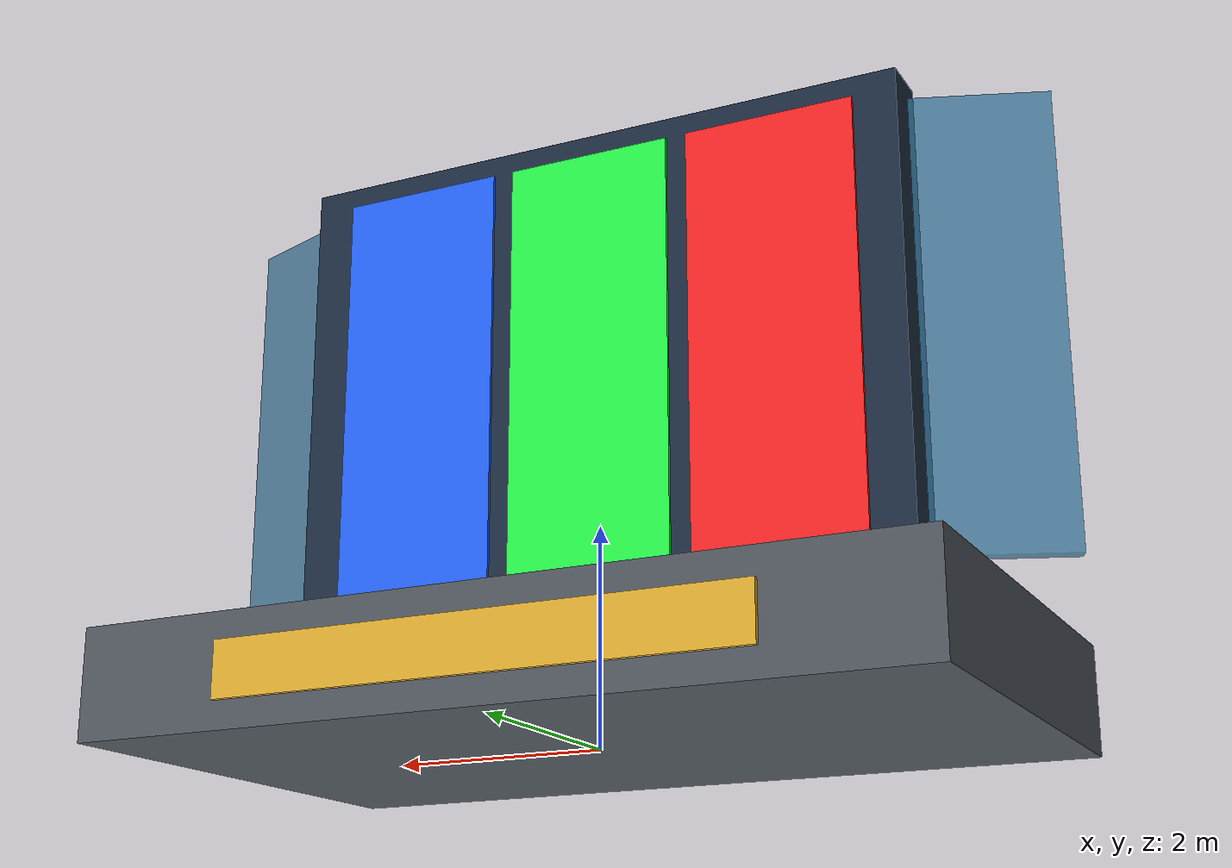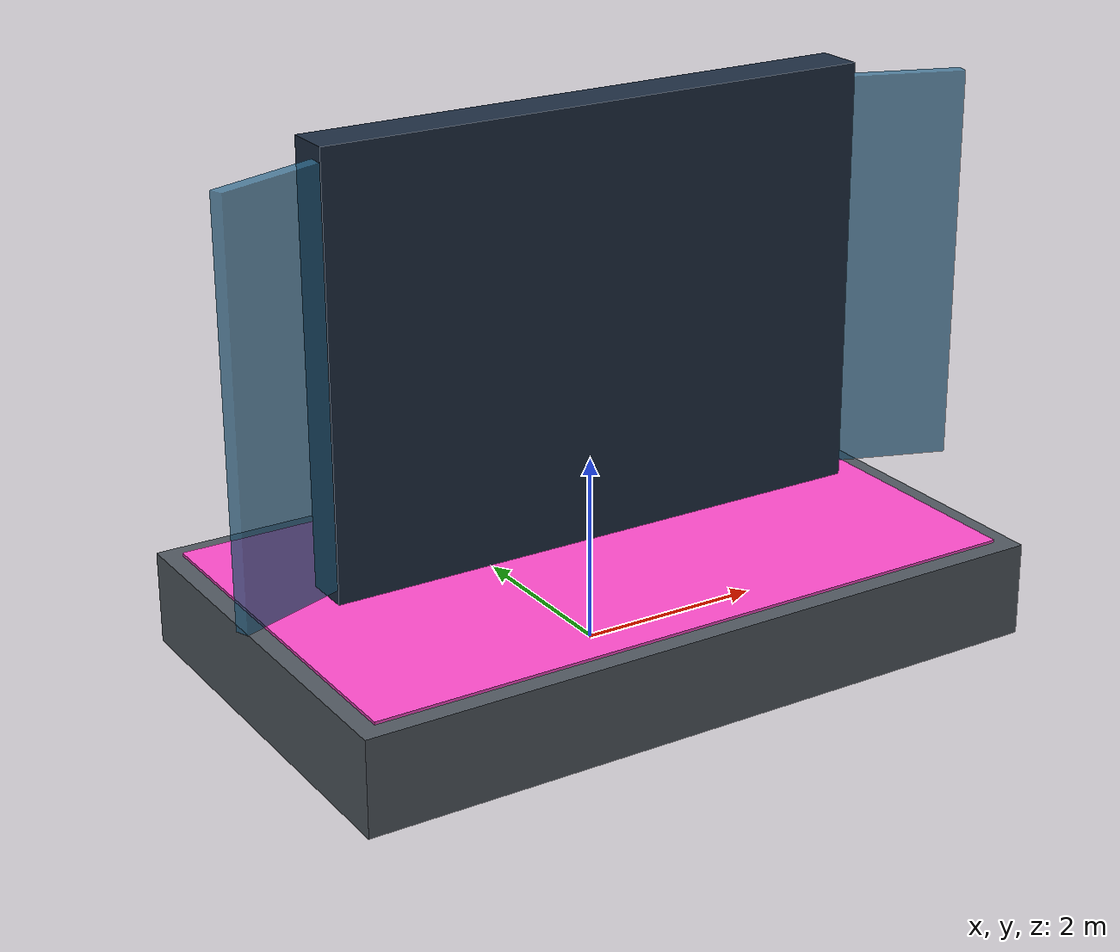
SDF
<?xml version="1.0" ?>
<sdf version="1.8">
  <model name="monument_lcd_microled">
    <static>true</static>
    <link name="monument_link">
      <collision name="col">
        <pose>0 0 3.0 0 0 0</pose>
        <geometry><box><size>7.6 4.6 6.0</size></box></geometry>
      </collision>

      <!-- 1. 鈦合金金屬拉絲科技基座 (Titanium Brushed Base) -->
      <visual name="plinth_base">
        <pose>0 0 0.5 0 0 0</pose>
        <geometry><box><size>7.6 4.6 1.0</size></box></geometry>
        <material>
          <ambient>0.24 0.26 0.28 1</ambient>
          <diffuse>0.32 0.35 0.38 1</diffuse>
          <specular>0.85 0.85 0.9 1</specular>
        </material>
      </visual>
      <visual name="plinth_rgb_ring">
        <pose>0 0 1.01 0 0 0</pose>
        <geometry><box><size>7.2 4.2 0.04</size></box></geometry>
        <material>
          <ambient>0.9 0.2 0.6 1</ambient>
          <diffuse>1.0 0.3 0.8 1</diffuse>
          <emissive>0.8 0.2 0.6 1</emissive>
        </material>
      </visual>

      <!-- 2. 曲面超薄高畫質 Micro-LED 顯示主牆 (Curved Micro-LED Screen) -->
      <visual name="screen_main">
        <pose>0 0 3.5 0 0 0</pose>
        <geometry><box><size>6.0 0.5 4.5</size></box></geometry>
        <material>
          <ambient>0.08 0.12 0.18 1</ambient>
          <diffuse>0.12 0.18 0.26 1</diffuse>
          <specular>0.98 0.98 1.0 1</specular>
        </material>
      </visual>

      <!-- 3. RGB 光電三原色與微型像素陣列光雕 (Micro-LED Subpixel Ribbons) -->
      <!-- 紅色次像素帶 (Red Subpixels) -->
      <visual name="rgb_strip_r">
        <pose>-1.8 0.26 3.5 0 0 0</pose>
        <geometry><box><size>1.6 0.04 4.1</size></box></geometry>
        <material>
          <ambient>0.9 0.1 0.1 1</ambient>
          <diffuse>1.0 0.15 0.15 1</diffuse>
          <emissive>0.8 0.1 0.1 1</emissive>
        </material>
      </visual>
      <!-- 綠色次像素帶 (Green Subpixels) -->
      <visual name="rgb_strip_g">
        <pose>0 0.26 3.5 0 0 0</pose>
        <geometry><box><size>1.6 0.04 4.1</size></box></geometry>
        <material>
          <ambient>0.1 0.9 0.2 1</ambient>
          <diffuse>0.15 1.0 0.3 1</diffuse>
          <emissive>0.1 0.8 0.2 1</emissive>
        </material>
      </visual>
      <!-- 藍色次像素帶 (Blue Subpixels) -->
      <visual name="rgb_strip_b">
        <pose>1.8 0.26 3.5 0 0 0</pose>
        <geometry><box><size>1.6 0.04 4.1</size></box></geometry>
        <material>
          <ambient>0.1 0.3 0.95 1</ambient>
          <diffuse>0.15 0.4 1.0 1</diffuse>
          <emissive>0.1 0.3 0.9 1</emissive>
        </material>
      </visual>

      <!-- 4. 側翼半透明 OLED 展翼面板 (Transparent OLED Wings) -->
      <visual name="wing_left">
        <pose>-3.4 -0.3 3.5 0 0 0.35</pose>
        <geometry><box><size>1.6 0.15 4.2</size></box></geometry>
        <material>
          <ambient>0.15 0.35 0.45 0.75</ambient>
          <diffuse>0.20 0.45 0.60 0.75</diffuse>
          <specular>1 1 1 1</specular>
        </material>
      </visual>
      <visual name="wing_right">
        <pose>3.4 -0.3 3.5 0 0 -0.35</pose>
        <geometry><box><size>1.6 0.15 4.2</size></box></geometry>
        <material>
          <ambient>0.15 0.35 0.45 0.75</ambient>
          <diffuse>0.20 0.45 0.60 0.75</diffuse>
          <specular>1 1 1 1</specular>
        </material>
      </visual>

      <!-- 5. 金屬銘牌銘文 (友達・群創・晶電・光電科技之窗) -->
      <visual name="lcd_plaque">
        <pose>0 2.32 0.5 0 0 0</pose>
        <geometry><box><size>4.8 0.05 0.5</size></box></geometry>
        <material>
          <ambient>0.75 0.55 0.15 1</ambient>
          <diffuse>0.90 0.70 0.20 1</diffuse>
          <specular>0.9 0.8 0.4 1</specular>
        </material>
      </visual>
    </link>
  </model>
</sdf>
